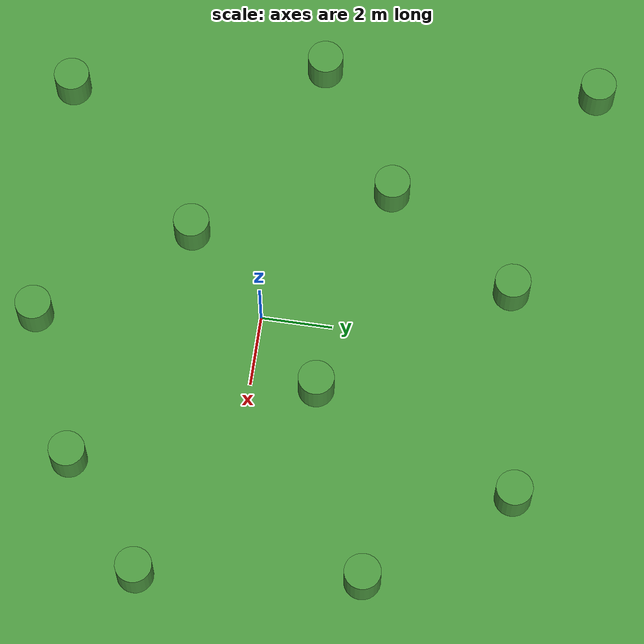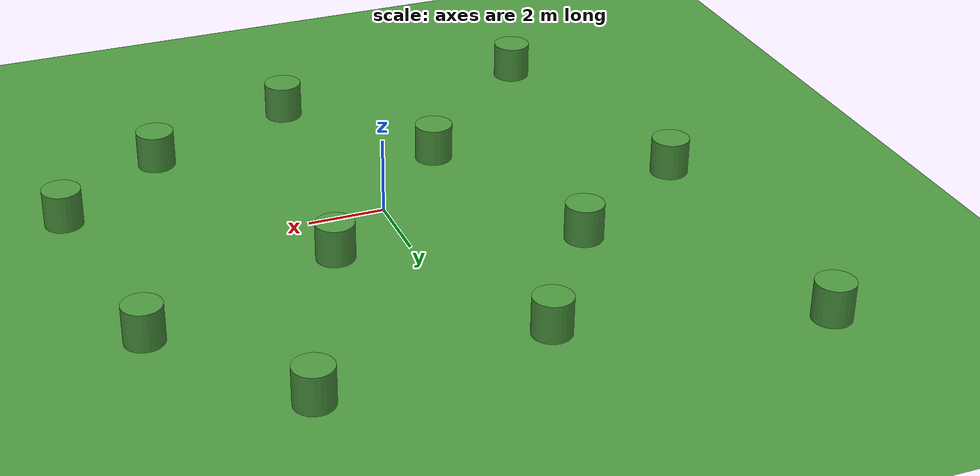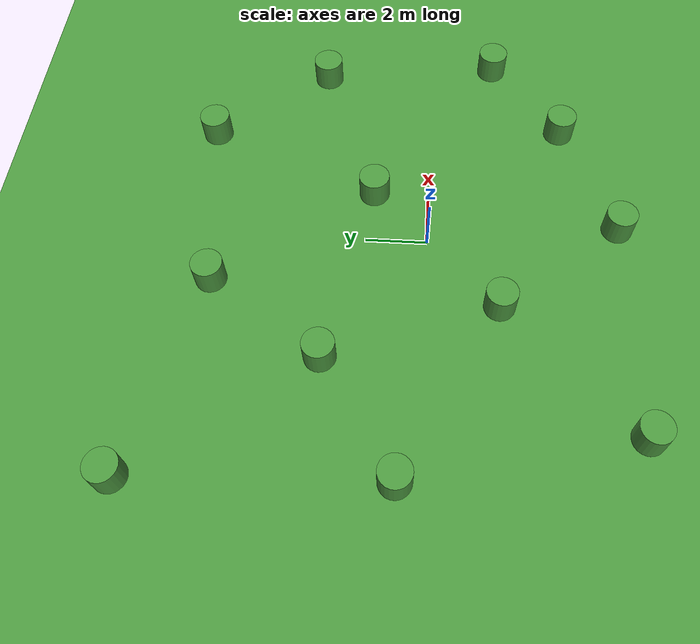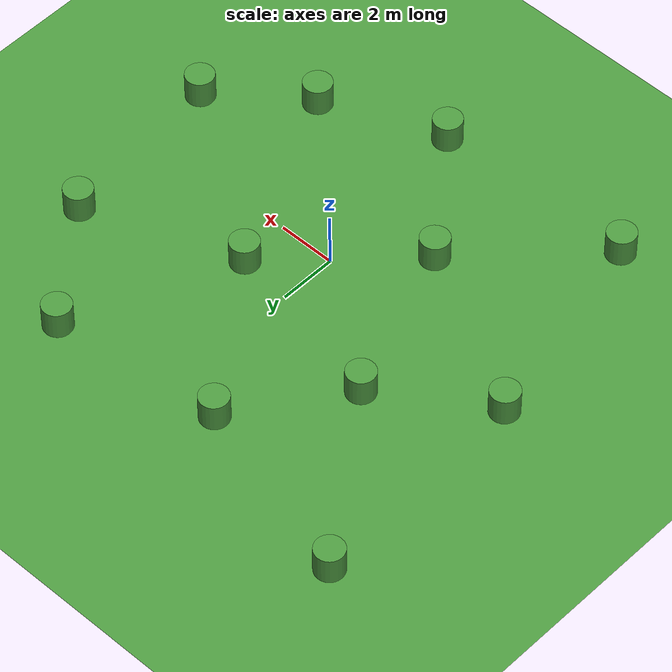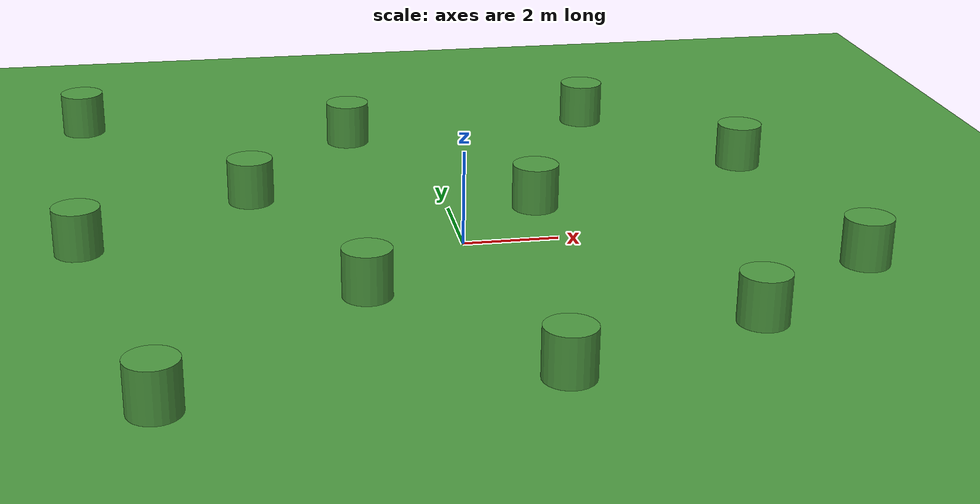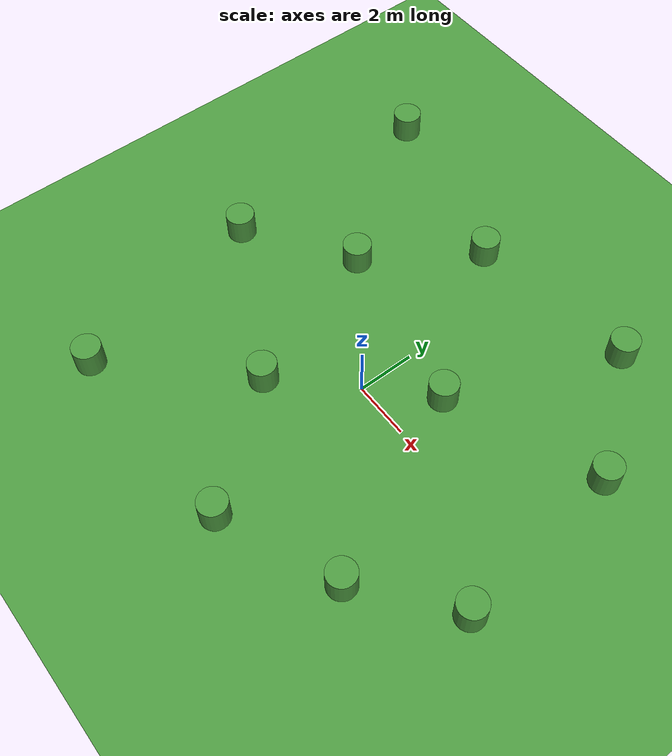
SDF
<sdf version="1.6">
 <world name="default">
  <light name="sun" type="directional">
   <pose>0 0 10 0 -0 0</pose>
   <diffuse>0.8 0.8 0.8 1</diffuse>
   <specular>0.2 0.2 0.2 1</specular>
   <attenuation>
    <range>1000</range>
    <constant>0.9</constant>
    <linear>0.01</linear>
    <quadratic>0.001</quadratic>
   </attenuation>
   <direction>-0.5 0.1 -0.9</direction>
  </light>
  <model name="ground_plane">
   <static>1</static>
   <link name="link">
    <collision name="collision">
     <geometry><plane><normal>0 0 1</normal><size>100 100</size></plane></geometry>
     <surface>
      <contact><collide_bitmask>65535</collide_bitmask></contact>
      <friction><ode><mu>100</mu><mu2>50</mu2></ode></friction>
     </surface>
    </collision>
    <visual name="visual">
     <cast_shadows>0</cast_shadows>
     <geometry><plane><normal>0 0 1</normal><size>100 100</size></plane></geometry>
     <material>
      <script><uri>file://media/materials/scripts/gazebo.material</uri><name>Gazebo/Grass</name></script>
     </material>
    </visual>
   </link>
  </model>
  <gravity>0 0 -9.8</gravity>
  <magnetic_field>6e-06 2.3e-05 -4.2e-05</magnetic_field>
  <atmosphere type="adiabatic"/>
  <physics name="default_physics" default="0" type="ode">
   <max_step_size>0.001</max_step_size>
   <real_time_factor>1</real_time_factor>
   <real_time_update_rate>1000</real_time_update_rate>
  </physics>
  <scene><ambient>0.4 0.4 0.4 1</ambient><background>0.7 0.7 0.7 1</background><shadows>1</shadows></scene>
  <audio><device>default</device></audio>
  <spherical_coordinates>
   <surface_model>EARTH_WGS84</surface_model>
   <latitude_deg>0</latitude_deg>
   <longitude_deg>0</longitude_deg>
   <elevation>0</elevation>
   <heading_deg>0</heading_deg>
  </spherical_coordinates>
  <model name="unit_cylinder">
   <pose>1.89073 1.8199 0.499998 3e-06 -3e-06 0</pose>
   <link name="link">
    <inertial>
     <mass>1</mass>
     <inertia><ixx>0.145833</ixx><ixy>0</ixy><ixz>0</ixz><iyy>0.145833</iyy><iyz>0</iyz><izz>0.125</izz></inertia>
    </inertial>
    <collision name="collision">
     <geometry><cylinder><radius>0.5</radius><length>1</length></cylinder></geometry>
    </collision>
    <visual name="visual">
     <geometry><cylinder><radius>0.5</radius><length>1</length></cylinder></geometry>
     <material>
      <script><name>Gazebo/Grass</name><uri>file://media/materials/scripts/gazebo.material</uri></script>
     </material>
    </visual>
   </link>
  </model>
  <model name="unit_cylinder_0">
   <pose>-4.21986 3.10531 0.499992 -3e-06 3e-06 0</pose>
   <link name="link">
    <inertial>
     <mass>1</mass>
     <inertia><ixx>0.145833</ixx><ixy>0</ixy><ixz>0</ixz><iyy>0.145833</iyy><iyz>0</iyz><izz>0.125</izz></inertia>
    </inertial>
    <collision name="collision">
     <geometry><cylinder><radius>0.5</radius><length>1</length></cylinder></geometry>
    </collision>
    <visual name="visual">
     <geometry><cylinder><radius>0.5</radius><length>1</length></cylinder></geometry>
     <material>
      <script><name>Gazebo/Grass</name><uri>file://media/materials/scripts/gazebo.material</uri></script>
     </material>
    </visual>
   </link>
  </model>
  <model name="unit_cylinder_1">
   <pose>-2.25577 -2.29823 0.499992 -3e-06 4e-06 0</pose>
   <link name="link">
    <inertial>
     <mass>1</mass>
     <inertia><ixx>0.145833</ixx><ixy>0</ixy><ixz>0</ixz><iyy>0.145833</iyy><iyz>0</iyz><izz>0.125</izz></inertia>
    </inertial>
    <collision name="collision">
     <geometry><cylinder><radius>0.5</radius><length>1</length></cylinder></geometry>
    </collision>
    <visual name="visual">
     <geometry><cylinder><radius>0.5</radius><length>1</length></cylinder></geometry>
     <material>
      <script><name>Gazebo/Grass</name><uri>file://media/materials/scripts/gazebo.material</uri></script>
     </material>
    </visual>
   </link>
  </model>
  <model name="unit_cylinder_2">
   <pose>4.85724 -4.54936 0.499998 3e-06 -4e-06 0</pose>
   <link name="link">
    <inertial>
     <mass>1</mass>
     <inertia><ixx>0.145833</ixx><ixy>0</ixy><ixz>0</ixz><iyy>0.145833</iyy><iyz>0</iyz><izz>0.125</izz></inertia>
    </inertial>
    <collision name="collision">
     <geometry><cylinder><radius>0.5</radius><length>1</length></cylinder></geometry>
    </collision>
    <visual name="visual">
     <geometry><cylinder><radius>0.5</radius><length>1</length></cylinder></geometry>
     <material>
      <script><name>Gazebo/Grass</name><uri>file://media/materials/scripts/gazebo.material</uri></script>
     </material>
    </visual>
   </link>
  </model>
  <model name="unit_cylinder_3">
   <pose>7.13822 3.81211 0.499998 3e-06 -4e-06 0</pose>
   <link name="link">
    <inertial>
     <mass>1</mass>
     <inertia><ixx>0.145833</ixx><ixy>0</ixy><ixz>0</ixz><iyy>0.145833</iyy><iyz>0</iyz><izz>0.125</izz></inertia>
    </inertial>
    <collision name="collision">
     <geometry><cylinder><radius>0.5</radius><length>1</length></cylinder></geometry>
    </collision>
    <visual name="visual">
     <geometry><cylinder><radius>0.5</radius><length>1</length></cylinder></geometry>
     <material>
      <script><name>Gazebo/Grass</name><uri>file://media/materials/scripts/gazebo.material</uri></script>
     </material>
    </visual>
   </link>
  </model>
  <model name="unit_cylinder_4">
   <pose>-1.70111 6.79835 0.499998 3e-06 -4e-06 0</pose>
   <link name="link">
    <inertial>
     <mass>1</mass>
     <inertia><ixx>0.145833</ixx><ixy>0</ixy><ixz>0</ixz><iyy>0.145833</iyy><iyz>0</iyz><izz>0.125</izz></inertia>
    </inertial>
    <collision name="collision">
     <geometry><cylinder><radius>0.5</radius><length>1</length></cylinder></geometry>
    </collision>
    <visual name="visual">
     <geometry><cylinder><radius>0.5</radius><length>1</length></cylinder></geometry>
     <material>
      <script><name>Gazebo/Grass</name><uri>file://media/materials/scripts/gazebo.material</uri></script>
     </material>
    </visual>
   </link>
  </model>
  <model name="unit_cylinder_5">
   <pose>0.79758 -6.21742 0.499992 -3e-06 -4e-06 -0</pose>
   <link name="link">
    <inertial>
     <mass>1</mass>
     <inertia><ixx>0.145833</ixx><ixy>0</ixy><ixz>0</ixz><iyy>0.145833</iyy><iyz>0</iyz><izz>0.125</izz></inertia>
    </inertial>
    <collision name="collision">
     <geometry><cylinder><radius>0.5</radius><length>1</length></cylinder></geometry>
    </collision>
    <visual name="visual">
     <geometry><cylinder><radius>0.5</radius><length>1</length></cylinder></geometry>
     <material>
      <script><name>Gazebo/Grass</name><uri>file://media/materials/scripts/gazebo.material</uri></script>
     </material>
    </visual>
   </link>
  </model>
  <model name="unit_cylinder_6">
   <pose>-6.26983 -6.3981 0.499997 3e-06 3e-06 0</pose>
   <link name="link">
    <inertial>
     <mass>1</mass>
     <inertia><ixx>0.145833</ixx><ixy>0</ixy><ixz>0</ixz><iyy>0.145833</iyy><iyz>0</iyz><izz>0.125</izz></inertia>
    </inertial>
    <collision name="collision">
     <geometry><cylinder><radius>0.5</radius><length>1</length></cylinder></geometry>
    </collision>
    <visual name="visual">
     <geometry><cylinder><radius>0.5</radius><length>1</length></cylinder></geometry>
     <material>
      <script><name>Gazebo/Grass</name><uri>file://media/materials/scripts/gazebo.material</uri></script>
     </material>
    </visual>
   </link>
  </model>
  <model name="unit_cylinder_7">
   <pose>-7.83691 0.696581 0.499997 3e-06 4e-06 -0</pose>
   <link name="link">
    <inertial>
     <mass>1</mass>
     <inertia><ixx>0.145833</ixx><ixy>0</ixy><ixz>0</ixz><iyy>0.145833</iyy><iyz>0</iyz><izz>0.125</izz></inertia>
    </inertial>
    <collision name="collision">
     <geometry><cylinder><radius>0.5</radius><length>1</length></cylinder></geometry>
    </collision>
    <visual name="visual">
     <geometry><cylinder><radius>0.5</radius><length>1</length></cylinder></geometry>
     <material>
      <script><name>Gazebo/Grass</name><uri>file://media/materials/scripts/gazebo.material</uri></script>
     </material>
    </visual>
   </link>
  </model>
  <model name="unit_cylinder_8">
   <pose>-8.06642 8.52183 0.499993 -3e-06 -4e-06 -0</pose>
   <link name="link">
    <inertial>
     <mass>1</mass>
     <inertia><ixx>0.145833</ixx><ixy>0</ixy><ixz>0</ixz><iyy>0.145833</iyy><iyz>0</iyz><izz>0.125</izz></inertia>
    </inertial>
    <collision name="collision">
     <geometry><cylinder><radius>0.5</radius><length>1</length></cylinder></geometry>
    </collision>
    <visual name="visual">
     <geometry><cylinder><radius>0.5</radius><length>1</length></cylinder></geometry>
     <material>
      <script><name>Gazebo/Grass</name><uri>file://media/materials/scripts/gazebo.material</uri></script>
     </material>
    </visual>
   </link>
  </model>
  <model name="unit_cylinder_9">
   <pose>4.25336 7.52814 0.499993 -3e-06 -4e-06 -0</pose>
   <link name="link">
    <inertial>
     <mass>1</mass>
     <inertia><ixx>0.145833</ixx><ixy>0</ixy><ixz>0</ixz><iyy>0.145833</iyy><iyz>0</iyz><izz>0.125</izz></inertia>
    </inertial>
    <collision name="collision">
     <geometry><cylinder><radius>0.5</radius><length>1</length></cylinder></geometry>
    </collision>
    <visual name="visual">
     <geometry><cylinder><radius>0.5</radius><length>1</length></cylinder></geometry>
     <material>
      <script><name>Gazebo/Grass</name><uri>file://media/materials/scripts/gazebo.material</uri></script>
     </material>
    </visual>
   </link>
  </model>
  <model name="unit_cylinder_10">
   <pose>7.80911 -2.22442 0.499997 3e-06 4e-06 -0</pose>
   <link name="link">
    <inertial>
     <mass>1</mass>
     <inertia><ixx>0.145833</ixx><ixy>0</ixy><ixz>0</ixz><iyy>0.145833</iyy><iyz>0</iyz><izz>0.125</izz></inertia>
    </inertial>
    <collision name="collision">
     <geometry><cylinder><radius>0.5</radius><length>1</length></cylinder></geometry>
    </collision>
    <visual name="visual">
     <geometry><cylinder><radius>0.5</radius><length>1</length></cylinder></geometry>
     <material>
      <script><name>Gazebo/Grass</name><uri>file://media/materials/scripts/gazebo.material</uri></script>
     </material>
    </visual>
   </link>
  </model>
 </world>
</sdf>
